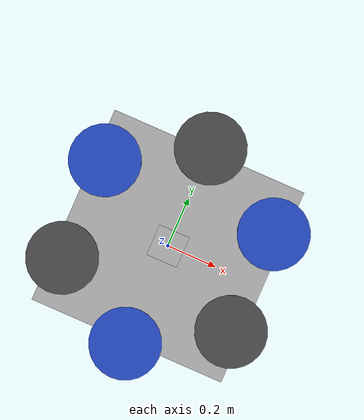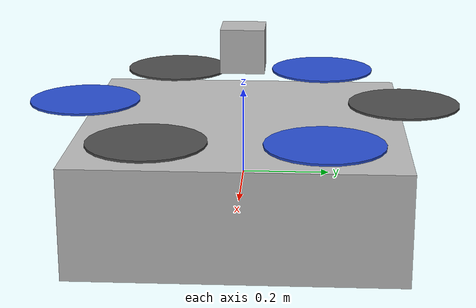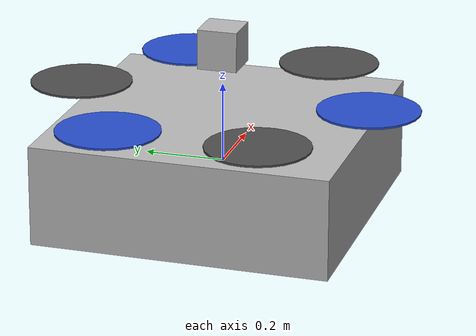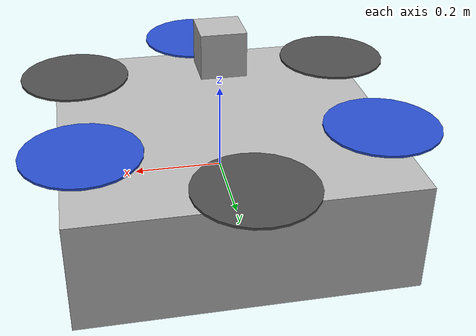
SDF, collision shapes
<?xml version='1.0'?>
<sdf version='1.6'>
  <model name='sdu_aed'>
    <!-- SDU Drone body -->
    <link name='base_link'>
      <pose>0 0 0 0 -0 3.1415</pose>
      <inertial>
        <pose>0 0 0 0 -0 0</pose>
        <mass>1.5</mass>
        <inertia>
          <ixx>0.0762625</ixx>
          <ixy>0</ixy>
          <ixz>0</ixz>
          <iyy>0.0762625</iyy>
          <iyz>0</iyz>
          <izz>0.1369</izz>
        </inertia>
      </inertial>
      <collision name='base_link_inertia_collision'>
        <pose>0 0 0 0 -0 0</pose>
        <geometry>
          <box>
            <size>0.74 0.74 0.25</size>
          </box>
        </geometry>
        <surface>
          <contact>
            <ode>
              <min_depth>0.001</min_depth>
              <max_vel>0</max_vel>
            </ode>
          </contact>
          <friction>
            <ode/>
          </friction>
        </surface>
      </collision>
      <visual name='base_link_inertia_visual'>
        <pose>0 0 0.125 0 0 0</pose>
        <geometry>
          <mesh>
            <scale>1 1 1</scale>
            <uri>model://sdu_description/meshes/sdu_drone.dae</uri>
          </mesh>
        </geometry>
      </visual>
      <gravity>1</gravity>
      <velocity_decay/>
    </link>
    <link name='/imu_link'>
      <pose>0 0 0 0 -0 0</pose>
      <inertial>
        <pose>0 0 0 0 -0 0</pose>
        <mass>0.015</mass>
        <inertia>
          <ixx>1e-05</ixx>
          <ixy>0</ixy>
          <ixz>0</ixz>
          <iyy>1e-05</iyy>
          <iyz>0</iyz>
          <izz>1e-05</izz>
        </inertia>
      </inertial>
    </link>
    <joint name='/imu_joint' type='revolute'>
      <child>/imu_link</child>
      <parent>base_link</parent>
      <axis>
        <xyz>1 0 0</xyz>
        <limit>
          <lower>0</lower>
          <upper>0</upper>
          <effort>0</effort>
          <velocity>0</velocity>
        </limit>
        <dynamics>
          <spring_reference>0</spring_reference>
          <spring_stiffness>0</spring_stiffness>
        </dynamics>
        <use_parent_model_frame>1</use_parent_model_frame>
      </axis>
    </joint>

    <!-- Landing gear -->
    <!-- for a box: ixx = 0.083 * mass * (y*y + z*z) -->
          <!-- for a box: iyy = 0.083 * mass * (x*x + z*z) -->
          <!-- for a box: izz = 0.083 * mass * (x*x + y*y) -->

<!-- Landing gear -->
    <!-- for a box: ixx = 0.083 * mass * (y*y + z*z) -->
          <!-- for a box: iyy = 0.083 * mass * (x*x + z*z) -->
          <!-- for a box: izz = 0.083 * mass * (x*x + y*y) -->

    <!-- Rotor 0 (CW) -->
    <link name='rotor_0'>
      <pose>0.0 -0.37 0.170 0 -0 0</pose>
      <inertial>
        <pose>0 0 0 0 -0 0</pose>
        <mass>0.005</mass>
        <inertia>
          <ixx>9.75e-07</ixx>
          <ixy>0</ixy>
          <ixz>0</ixz>
          <iyy>0.000273104</iyy>
          <iyz>0</iyz>
          <izz>0.000274004</izz>
        </inertia>
      </inertial>
      <collision name='rotor_0_collision'>
        <pose>0 0 0 0 -0 0</pose>
        <geometry>
          <cylinder>
            <length>0.005</length>
            <radius>0.128</radius>
          </cylinder>
        </geometry>
        <surface>
          <contact>
            <ode/>
          </contact>
          <friction>
            <ode/>
          </friction>
        </surface>
      </collision>
      <visual name='rotor_0_visual'>
        <pose>0 0 0 0 -0 0</pose>
        <geometry>
          <mesh>
            <scale>1.5 1.5 1.5</scale>
            <uri>model://sdu_description/meshes/prop_cw.dae</uri>
          </mesh>
        </geometry>
        <material>
          <script>
            <name>Gazebo/Blue</name>
            <uri>file://media/materials/scripts/gazebo.material</uri>
          </script>
        </material>
      </visual>
      <gravity>1</gravity>
      <velocity_decay/>
    </link>
    <joint name='rotor_0_joint' type='revolute'>
      <child>rotor_0</child>
      <parent>base_link</parent>
      <axis>
        <xyz>0 0 1</xyz>
        <limit>
          <lower>-1e+16</lower>
          <upper>1e+16</upper>
        </limit>
        <dynamics>
          <spring_reference>0</spring_reference>
          <spring_stiffness>0</spring_stiffness>
        </dynamics>
        <use_parent_model_frame>1</use_parent_model_frame>
      </axis>
    </joint>

    <!-- Rotor 1 (CCW) -->
    <link name='rotor_1'>
      <pose>0 0.37 0.170 0 -0 0</pose>
      <inertial>
        <pose>0 0 0 0 -0 0</pose>
        <mass>0.005</mass>
        <inertia>
          <ixx>9.75e-07</ixx>
          <ixy>0</ixy>
          <ixz>0</ixz>
          <iyy>0.000273104</iyy>
          <iyz>0</iyz>
          <izz>0.000274004</izz>
        </inertia>
      </inertial>
      <collision name='rotor_1_collision'>
        <pose>0 0 0 0 -0 0</pose>
        <geometry>
          <cylinder>
            <length>0.005</length>
            <radius>0.128</radius>
          </cylinder>
        </geometry>
        <surface>
          <contact>
            <ode/>
          </contact>
          <friction>
            <ode/>
          </friction>
        </surface>
      </collision>
      <visual name='rotor_1_visual'>
        <pose>0 0 0 0 -0 0</pose>
        <geometry>
          <mesh>
            <scale>1.5 1.5 1.5</scale>
            <uri>model://sdu_description/meshes/prop_ccw.dae</uri>
          </mesh>
        </geometry>
        <material>
          <script>
            <name>Gazebo/DarkGrey</name>
            <uri>file://media/materials/scripts/gazebo.material</uri>
          </script>
        </material>
      </visual>
      <gravity>1</gravity>
      <velocity_decay/>
    </link>
    <joint name='rotor_1_joint' type='revolute'>
      <child>rotor_1</child>
      <parent>base_link</parent>
      <axis>
        <xyz>0 0 1</xyz>
        <limit>
          <lower>-1e+16</lower>
          <upper>1e+16</upper>
        </limit>
        <dynamics>
          <spring_reference>0</spring_reference>
          <spring_stiffness>0</spring_stiffness>
        </dynamics>
        <use_parent_model_frame>1</use_parent_model_frame>
      </axis>
    </joint>

    <!-- Rotor 2 (CW) -->
    <link name='rotor_2'>
      <pose>0.320429 0.185000 0.170 0 -0 0</pose>
      <inertial>
        <pose>0 0 0 0 -0 0</pose>
        <mass>0.005</mass>
        <inertia>
          <ixx>9.75e-07</ixx>
          <ixy>0</ixy>
          <ixz>0</ixz>
          <iyy>0.000273104</iyy>
          <iyz>0</iyz>
          <izz>0.000274004</izz>
        </inertia>
      </inertial>
      <collision name='rotor_2_collision'>
        <pose>0 0 0 0 -0 0</pose>
        <geometry>
          <cylinder>
            <length>0.005</length>
            <radius>0.128</radius>
          </cylinder>
        </geometry>
        <surface>
          <contact>
            <ode/>
          </contact>
          <friction>
            <ode/>
          </friction>
        </surface>
      </collision>
      <visual name='rotor_2_visual'>
        <pose>0 0 0 0 -0 0</pose>
        <geometry>
          <mesh>
            <scale>1.5 1.5 1.5</scale>
            <uri>model://sdu_description/meshes/prop_cw.dae</uri>
          </mesh>
        </geometry>
        <material>
          <script>
            <name>Gazebo/Blue</name>
            <uri>file://media/materials/scripts/gazebo.material</uri>
          </script>
        </material>
      </visual>
      <gravity>1</gravity>
      <velocity_decay/>
    </link>
    <joint name='rotor_2_joint' type='revolute'>
      <child>rotor_2</child>
      <parent>base_link</parent>
      <axis>
        <xyz>0 0 1</xyz>
        <limit>
          <lower>-1e+16</lower>
          <upper>1e+16</upper>
        </limit>
        <dynamics>
          <spring_reference>0</spring_reference>
          <spring_stiffness>0</spring_stiffness>
        </dynamics>
        <use_parent_model_frame>1</use_parent_model_frame>
      </axis>
    </joint>

    <!-- Rotor 3 (CW) -->
    <link name='rotor_3'>
      <pose>-0.320429 -0.185000 0.170 0 -0 0</pose>
      <inertial>
        <pose>0 0 0 0 -0 0</pose>
        <mass>0.005</mass>
        <inertia>
          <ixx>9.75e-07</ixx>
          <ixy>0</ixy>
          <ixz>0</ixz>
          <iyy>0.000273104</iyy>
          <iyz>0</iyz>
          <izz>0.000274004</izz>
        </inertia>
      </inertial>
      <collision name='rotor_3_collision'>
        <pose>0 0 0 0 -0 0</pose>
        <geometry>
          <cylinder>
            <length>0.005</length>
            <radius>0.128</radius>
          </cylinder>
        </geometry>
        <surface>
          <contact>
            <ode/>
          </contact>
          <friction>
            <ode/>
          </friction>
        </surface>
      </collision>
      <visual name='rotor_3_visual'>
        <pose>0 0 0 0 -0 0</pose>
        <geometry>
          <mesh>
            <scale>1.5 1.5 1.5</scale>
            <uri>model://sdu_description/meshes/prop_ccw.dae</uri>
          </mesh>
        </geometry>
        <material>
          <script>
            <name>Gazebo/DarkGrey</name>
            <uri>file://media/materials/scripts/gazebo.material</uri>
          </script>
        </material>
      </visual>
      <gravity>1</gravity>
      <velocity_decay/>
    </link>
    <joint name='rotor_3_joint' type='revolute'>
      <child>rotor_3</child>
      <parent>base_link</parent>
      <axis>
        <xyz>0 0 1</xyz>
        <limit>
          <lower>-1e+16</lower>
          <upper>1e+16</upper>
        </limit>
        <dynamics>
          <spring_reference>0</spring_reference>
          <spring_stiffness>0</spring_stiffness>
        </dynamics>
        <use_parent_model_frame>1</use_parent_model_frame>
      </axis>
    </joint>

    <!-- Rotor 4 (CW) -->
    <link name='rotor_4'>
      <pose>0.320429 -0.185000 0.170 0 -0 0</pose>
      <inertial>
        <pose>0 0 0 0 -0 0</pose>
        <mass>0.005</mass>
        <inertia>
          <ixx>9.75e-07</ixx>
          <ixy>0</ixy>
          <ixz>0</ixz>
          <iyy>0.000273104</iyy>
          <iyz>0</iyz>
          <izz>0.000274004</izz>
        </inertia>
      </inertial>
      <collision name='rotor_4_collision'>
        <pose>0 0 0 0 -0 0</pose>
        <geometry>
          <cylinder>
            <length>0.005</length>
            <radius>0.128</radius>
          </cylinder>
        </geometry>
        <surface>
          <contact>
            <ode/>
          </contact>
          <friction>
            <ode/>
          </friction>
        </surface>
      </collision>
      <visual name='rotor_4_visual'>
        <pose>0 0 0 0 -0 0</pose>
        <geometry>
          <mesh>
            <scale>1.5 1.5 1.5</scale>
            <uri>model://sdu_description/meshes/prop_ccw.dae</uri>
          </mesh>
        </geometry>
        <material>
          <script>
            <name>Gazebo/DarkGrey</name>
            <uri>file://media/materials/scripts/gazebo.material</uri>
          </script>
        </material>
      </visual>
      <gravity>1</gravity>
      <velocity_decay/>
    </link>
    <joint name='rotor_4_joint' type='revolute'>
      <child>rotor_4</child>
      <parent>base_link</parent>
      <axis>
        <xyz>0 0 1</xyz>
        <limit>
          <lower>-1e+16</lower>
          <upper>1e+16</upper>
        </limit>
        <dynamics>
          <spring_reference>0</spring_reference>
          <spring_stiffness>0</spring_stiffness>
        </dynamics>
        <use_parent_model_frame>1</use_parent_model_frame>
      </axis>
    </joint>

    <!-- Rotor 5 (CCW) -->
    <link name='rotor_5'>
      <pose>-0.320429 0.185000 0.170 0 -0 0</pose>
      <inertial>
        <pose>0 0 0 0 -0 0</pose>
        <mass>0.005</mass>
        <inertia>
          <ixx>9.75e-07</ixx>
          <ixy>0</ixy>
          <ixz>0</ixz>
          <iyy>0.000273104</iyy>
          <iyz>0</iyz>
          <izz>0.000274004</izz>
        </inertia>
      </inertial>
      <collision name='rotor_5_collision'>
        <pose>0 0 0 0 -0 0</pose>
        <geometry>
          <cylinder>
            <length>0.005</length>
            <radius>0.128</radius>
          </cylinder>
        </geometry>
        <surface>
          <contact>
            <ode/>
          </contact>
          <friction>
            <ode/>
          </friction>
        </surface>
      </collision>
      <visual name='rotor_5_visual'>
        <pose>0 0 0 0 -0 0</pose>
        <geometry>
          <mesh>
            <scale>1.5 1.5 1.5</scale>
            <uri>model://sdu_description/meshes/prop_cw.dae</uri>
          </mesh>
        </geometry>
        <material>
          <script>
            <name>Gazebo/Blue</name>
            <uri>file://media/materials/scripts/gazebo.material</uri>
          </script>
        </material>
      </visual>
      <gravity>1</gravity>
      <velocity_decay/>
    </link>
    <joint name='rotor_5_joint' type='revolute'>
      <child>rotor_5</child>
      <parent>base_link</parent>
      <axis>
        <xyz>0 0 1</xyz>
        <limit>
          <lower>-1e+16</lower>
          <upper>1e+16</upper>
        </limit>
        <dynamics>
          <spring_reference>0</spring_reference>
          <spring_stiffness>0</spring_stiffness>
        </dynamics>
        <use_parent_model_frame>1</use_parent_model_frame>
      </axis>
    </joint>

    <plugin name='rosbag' filename='libgazebo_multirotor_base_plugin.so'>
      <robotNamespace/>
      <linkName>base_link</linkName>
      <rotorVelocitySlowdownSim>10</rotorVelocitySlowdownSim>
    </plugin>

        <plugin name='motor_model_0' filename='libgazebo_motor_model.so'>
          <robotNamespace/>
          <jointName>rotor_0_joint</jointName>
          <linkName>rotor_0</linkName>
          <turningDirection>cw</turningDirection>
          <timeConstantUp>0.0125</timeConstantUp>
          <timeConstantDown>0.025</timeConstantDown>
          <maxRotVelocity>1100</maxRotVelocity>
          <motorConstant>8.54858e-06</motorConstant>
          <momentConstant>0.06</momentConstant>
          <commandSubTopic>/gazebo/command/motor_speed</commandSubTopic>
          <motorNumber>0</motorNumber>
          <rotorDragCoefficient>0.000806428</rotorDragCoefficient>
          <rollingMomentCoefficient>1e-06</rollingMomentCoefficient>
          <motorSpeedPubTopic>/motor_speed/0</motorSpeedPubTopic>
          <rotorVelocitySlowdownSim>10</rotorVelocitySlowdownSim>
        </plugin>
        <plugin name='motor_model_1' filename='libgazebo_motor_model.so'>
          <robotNamespace/>
          <jointName>rotor_1_joint</jointName>
          <linkName>rotor_1</linkName>
          <turningDirection>ccw</turningDirection>
          <timeConstantUp>0.0125</timeConstantUp>
          <timeConstantDown>0.025</timeConstantDown>
          <maxRotVelocity>1100</maxRotVelocity>
          <motorConstant>8.54858e-06</motorConstant>
          <momentConstant>0.06</momentConstant>
          <commandSubTopic>/gazebo/command/motor_speed</commandSubTopic>
          <motorNumber>1</motorNumber>
          <rotorDragCoefficient>0.000806428</rotorDragCoefficient>
          <rollingMomentCoefficient>1e-06</rollingMomentCoefficient>
          <motorSpeedPubTopic>/motor_speed/1</motorSpeedPubTopic>
          <rotorVelocitySlowdownSim>10</rotorVelocitySlowdownSim>
        </plugin>
        <plugin name='motor_model_2' filename='libgazebo_motor_model.so'>
          <robotNamespace/>
          <jointName>rotor_2_joint</jointName>
          <linkName>rotor_2</linkName>
          <turningDirection>cw</turningDirection>
          <timeConstantUp>0.0125</timeConstantUp>
          <timeConstantDown>0.025</timeConstantDown>
          <maxRotVelocity>1100</maxRotVelocity>
          <motorConstant>8.54858e-06</motorConstant>
          <momentConstant>0.06</momentConstant>
          <commandSubTopic>/gazebo/command/motor_speed</commandSubTopic>
          <motorNumber>2</motorNumber>
          <rotorDragCoefficient>0.000806428</rotorDragCoefficient>
          <rollingMomentCoefficient>1e-06</rollingMomentCoefficient>
          <motorSpeedPubTopic>/motor_speed/2</motorSpeedPubTopic>
          <rotorVelocitySlowdownSim>10</rotorVelocitySlowdownSim>
        </plugin>
        <plugin name='motor_model_3' filename='libgazebo_motor_model.so'>
          <robotNamespace/>
          <jointName>rotor_3_joint</jointName>
          <linkName>rotor_3</linkName>
          <turningDirection>ccw</turningDirection>
          <timeConstantUp>0.0125</timeConstantUp>
          <timeConstantDown>0.025</timeConstantDown>
          <maxRotVelocity>1100</maxRotVelocity>
          <motorConstant>8.54858e-06</motorConstant>
          <momentConstant>0.06</momentConstant>
          <commandSubTopic>/gazebo/command/motor_speed</commandSubTopic>
          <motorNumber>3</motorNumber>
          <rotorDragCoefficient>0.000806428</rotorDragCoefficient>
          <rollingMomentCoefficient>1e-06</rollingMomentCoefficient>
          <motorSpeedPubTopic>/motor_speed/3</motorSpeedPubTopic>
          <rotorVelocitySlowdownSim>10</rotorVelocitySlowdownSim>
        </plugin>
        <plugin name='motor_model_4' filename='libgazebo_motor_model.so'>
          <robotNamespace/>
          <jointName>rotor_4_joint</jointName>
          <linkName>rotor_4</linkName>
          <turningDirection>ccw</turningDirection>
          <timeConstantUp>0.0125</timeConstantUp>
          <timeConstantDown>0.025</timeConstantDown>
          <maxRotVelocity>1100</maxRotVelocity>
          <motorConstant>8.54858e-06</motorConstant>
          <momentConstant>0.06</momentConstant>
          <commandSubTopic>/gazebo/command/motor_speed</commandSubTopic>
          <motorNumber>4</motorNumber>
          <rotorDragCoefficient>0.000806428</rotorDragCoefficient>
          <rollingMomentCoefficient>1e-06</rollingMomentCoefficient>
          <motorSpeedPubTopic>/motor_speed/3</motorSpeedPubTopic>
          <rotorVelocitySlowdownSim>10</rotorVelocitySlowdownSim>
        </plugin>
        <plugin name='motor_model_5' filename='libgazebo_motor_model.so'>
          <robotNamespace/>
          <jointName>rotor_5_joint</jointName>
          <linkName>rotor_5</linkName>
          <turningDirection>cw</turningDirection>
          <timeConstantUp>0.0125</timeConstantUp>
          <timeConstantDown>0.025</timeConstantDown>
          <maxRotVelocity>1100</maxRotVelocity>
          <motorConstant>8.54858e-06</motorConstant>
          <momentConstant>0.06</momentConstant>
          <commandSubTopic>/gazebo/command/motor_speed</commandSubTopic>
          <motorNumber>5</motorNumber>
          <rotorDragCoefficient>0.000806428</rotorDragCoefficient>
          <rollingMomentCoefficient>1e-06</rollingMomentCoefficient>
          <motorSpeedPubTopic>/motor_speed/3</motorSpeedPubTopic>
          <rotorVelocitySlowdownSim>10</rotorVelocitySlowdownSim>
        </plugin>

    <model name='gps0'>
      <link name='link'>
        <pose>0 0 0 0 -0 0</pose>
        <inertial>
          <pose>0 0 0 0 -0 0</pose>
          <mass>0.01</mass>
          <inertia>
            <ixx>2.1733e-06</ixx>
            <ixy>0</ixy>
            <ixz>0</ixz>
            <iyy>2.1733e-06</iyy>
            <iyz>0</iyz>
            <izz>1.8e-07</izz>
          </inertia>
        </inertial>
        <visual name='visual'>
          <geometry>
            <cylinder>
              <radius>0.01</radius>
              <length>0.002</length>
            </cylinder>
          </geometry>
          <material>
            <script>
              <name>Gazebo/Black</name>
              <uri>__default__</uri>
            </script>
          </material>
        </visual>
        <sensor name='gps' type='gps'>
          <pose>0 0 0 0 -0 0</pose>
          <plugin name='gps_plugin' filename='libgazebo_gps_plugin.so'>
            <robotNamespace/>
            <gpsNoise>1</gpsNoise>
            <gpsXYRandomWalk>2.0</gpsXYRandomWalk>
            <gpsZRandomWalk>4.0</gpsZRandomWalk>
            <gpsXYNoiseDensity>0.0002</gpsXYNoiseDensity>
            <gpsZNoiseDensity>0.0004</gpsZNoiseDensity>
            <gpsVXYNoiseDensity>0.2</gpsVXYNoiseDensity>
            <gpsVZNoiseDensity>0.4</gpsVZNoiseDensity>
	    <referenceLatitude>47.3972419</referenceLatitude>
    	    <referenceLongitude>8.5455939</referenceLongitude>
    	    <referenceAltitude>535.844915703</referenceAltitude>
          </plugin>
        </sensor>
      </link>
    </model>
    <joint name='gps0_joint' type='fixed'>
      <parent>base_link</parent>
      <child>gps0::link</child>
    </joint>
    <plugin name='groundtruth_plugin' filename='libgazebo_groundtruth_plugin.so'>
      <robotNamespace/>
    </plugin>
    <plugin name='magnetometer_plugin' filename='libgazebo_magnetometer_plugin.so'>
      <robotNamespace/>
      <pubRate>20</pubRate>
      <noiseDensity>0.0004</noiseDensity>
      <randomWalk>6.4e-06</randomWalk>
      <biasCorrelationTime>600</biasCorrelationTime>
      <magTopic>/mag</magTopic>
    </plugin>
    <plugin name='barometer_plugin' filename='libgazebo_barometer_plugin.so'>
      <robotNamespace/>
      <pubRate>10</pubRate>
      <baroTopic>/baro</baroTopic>
    </plugin>

    <plugin name='parachute_plugin' filename='libgazebo_parachute_plugin.so'>
      <robotNamespace/>
      <commandSubTopic>/gazebo/command/motor_speed</commandSubTopic>
      <motorNumber>6</motorNumber>
    </plugin>

    <plugin name='mavlink_interface' filename='libgazebo_mavlink_interface.so'>
      <robotNamespace></robotNamespace>
      <imuSubTopic>/imu</imuSubTopic>
      <magSubTopic>/mag</magSubTopic>
      <baroSubTopic>/baro</baroSubTopic>
      <mavlink_addr>INADDR_ANY</mavlink_addr>
      <mavlink_udp_port>14560</mavlink_udp_port>
      <mavlink_tcp_port>4560</mavlink_tcp_port>
      <serialEnabled>false</serialEnabled>
      <serialDevice>/dev/ttyACM0</serialDevice>
      <baudRate>921600</baudRate>
      <qgc_addr>INADDR_ANY</qgc_addr>
      <qgc_udp_port>14550</qgc_udp_port>
      <sdk_addr>INADDR_ANY</sdk_addr>
      <sdk_udp_port>14540</sdk_udp_port>
      <hil_mode>0</hil_mode>
      <hil_state_level>0</hil_state_level>
      <vehicle_is_tailsitter>0</vehicle_is_tailsitter>
      <send_vision_estimation>1</send_vision_estimation>
      <send_odometry>0</send_odometry>
      <enable_lockstep>1</enable_lockstep>
      <use_tcp>1</use_tcp>
      <motorSpeedCommandPubTopic>/gazebo/command/motor_speed</motorSpeedCommandPubTopic>
      <control_channels>
        <channel name="rotor0">
          <input_index>0</input_index>
          <input_offset>0</input_offset>
          <input_scaling>1500</input_scaling>
          <zero_position_disarmed>0</zero_position_disarmed>
          <zero_position_armed>100</zero_position_armed>
          <joint_control_type>velocity</joint_control_type>
          <joint_name>rotor_0_joint</joint_name>
        </channel>
        <channel name="rotor1">
          <input_index>1</input_index>
          <input_offset>0</input_offset>
          <input_scaling>1500</input_scaling>
          <zero_position_disarmed>0</zero_position_disarmed>
          <zero_position_armed>100</zero_position_armed>
          <joint_control_type>velocity</joint_control_type>
          <joint_name>rotor_1_joint</joint_name>
        </channel>
        <channel name="rotor2">
          <input_index>2</input_index>
          <input_offset>0</input_offset>
          <input_scaling>1500</input_scaling>
          <zero_position_disarmed>0</zero_position_disarmed>
          <zero_position_armed>100</zero_position_armed>
          <joint_control_type>velocity</joint_control_type>
          <joint_name>rotor_2_joint</joint_name>
        </channel>
        <channel name="rotor3">
          <input_index>3</input_index>
          <input_offset>0</input_offset>
          <input_scaling>1500</input_scaling>
          <zero_position_disarmed>0</zero_position_disarmed>
          <zero_position_armed>100</zero_position_armed>
          <joint_control_type>velocity</joint_control_type>
          <joint_name>rotor_3_joint</joint_name>
        </channel>
        <channel name="rotor4">
          <input_index>4</input_index>
          <input_offset>0</input_offset>
          <input_scaling>1500</input_scaling>
          <zero_position_disarmed>0</zero_position_disarmed>
          <zero_position_armed>100</zero_position_armed>
          <joint_control_type>velocity</joint_control_type>
          <joint_name>rotor_4_joint</joint_name>
        </channel>
        <channel name="rotor5">
          <input_index>5</input_index>
          <input_offset>0</input_offset>
          <input_scaling>1500</input_scaling>
          <zero_position_disarmed>0</zero_position_disarmed>
          <zero_position_armed>100</zero_position_armed>
          <joint_control_type>velocity</joint_control_type>
          <joint_name>rotor_5_joint</joint_name>
        </channel>
        <channel name='aux1'>
          <input_index>6</input_index>
          <input_offset>0</input_offset>
          <input_scaling>1000</input_scaling>
          <zero_position_disarmed>0</zero_position_disarmed>
          <zero_position_armed>100</zero_position_armed>
          <joint_control_type>velocity</joint_control_type>
        </channel>
      </control_channels>
    </plugin>
    <static>0</static>
    <plugin name='gazebo_imu_plugin' filename='libgazebo_imu_plugin.so'>
      <robotNamespace></robotNamespace>
      <linkName>/imu_link</linkName>
      <imuTopic>/imu</imuTopic>
      <gyroscopeNoiseDensity>0.0003394</gyroscopeNoiseDensity>
      <gyroscopeRandomWalk>3.8785e-05</gyroscopeRandomWalk>
      <gyroscopeBiasCorrelationTime>1000.0</gyroscopeBiasCorrelationTime>
      <gyroscopeTurnOnBiasSigma>0.0087</gyroscopeTurnOnBiasSigma>
      <accelerometerNoiseDensity>0.004</accelerometerNoiseDensity>
      <accelerometerRandomWalk>0.006</accelerometerRandomWalk>
      <accelerometerBiasCorrelationTime>300.0</accelerometerBiasCorrelationTime>
      <accelerometerTurnOnBiasSigma>0.196</accelerometerTurnOnBiasSigma>
    </plugin>

<!-- Depth Camera sensor -->
    <link name='sensor_link'>
      <pose>0.0 0.0 -0.08 0 0 0</pose>
      <inertial>
        <mass>0.095</mass>
        <inertia>
          <ixx>4.15e-6</ixx>
          <ixy>0</ixy>
          <ixz>0</ixz>
          <iyy>2.407e-6</iyy>
          <iyz>0</iyz>
          <izz>2.407e-6</izz>
        </inertia>
      </inertial>
      <sensor name="depth_camera" type="depth">
        <update_rate>30</update_rate>
        <pose>0.0 0.0 0.0 0 1.57 3.1415</pose>
        <camera>
          <horizontal_fov>1.22173</horizontal_fov>
          <image>
            <format>R8G8B8</format>
            <width>320</width>
            <height>240</height>
          </image>
          <clip>
            <near>0.1</near>
            <far>20</far>
          </clip>
        </camera>
        <plugin filename="libgazebo_ros_openni_kinect.so" name="camera_controller">
          <cameraName>camera</cameraName>
          <alwaysOn>true</alwaysOn>
          <updateRate>30</updateRate>
          <pointCloudCutoff>0.25</pointCloudCutoff>
          <pointCloudCutoffMax>9</pointCloudCutoffMax>
          <imageTopicName>color/image_raw</imageTopicName>
          <cameraInfoTopicName>color/camera_info</cameraInfoTopicName>
          <depthImageTopicName>depth/image_rect_raw</depthImageTopicName>
          <depthImageCameraInfoTopicName>depth/camera_info</depthImageCameraInfoTopicName>
          <pointCloudTopicName>depth/color/points</pointCloudTopicName>
          <frameName>camera_link</frameName>
          <distortion_k1>0.0</distortion_k1>
          <distortion_k2>0.0</distortion_k2>
          <distortion_k3>0.0</distortion_k3>
          <distortion_t1>0.0</distortion_t1>
          <distortion_t2>0.0</distortion_t2>
        </plugin>
      </sensor>
      <self_collide>0</self_collide>
      <kinematic>0</kinematic>
    </link>

<joint name='sensor_joint' type='revolute'>
      <child>sensor_link</child>
      <parent>base_link</parent>
      <axis>
        <xyz>1 0 0</xyz>
        <limit>
          <lower>0</lower>
          <upper>0</upper>
          <effort>0</effort>
          <velocity>0</velocity>
        </limit>
        <dynamics>
          <spring_reference>0</spring_reference>
          <spring_stiffness>0</spring_stiffness>
        </dynamics>
        <use_parent_model_frame>1</use_parent_model_frame>
      </axis>
    </joint>

<link name="imu_link">
          <pose>0 0 0 0 0 0</pose>
          <collision name="collision">
            <pose>0 0 0.3 0 0 0</pose>
            <geometry>
              <box>
                <size>0.1 0.1 0.1</size>
              </box>
            </geometry>
          </collision>
          <inertial>
            <mass>0.016</mass>
            <inertia>
               <ixx>0.0001</ixx>
               <ixy>0</ixy>
               <ixz>0</ixz>
               <iyy>0.0001</iyy>
               <iyz>0</iyz>
               <izz>0.0001</izz>
               <!-- low intertia necessary to avoid not disturb the ship -->
            </inertia>
          </inertial>

      <sensor name="imu_sensor" type="imu">
      <always_on>true</always_on>
      <update_rate>300</update_rate>
      <visualize>true</visualize>
      <topic>__default_topic__</topic>
      <plugin filename="libgazebo_ros_imu_sensor.so" name="imu_plugin">
        <topicName>imu</topicName>
        <bodyName>imu_link</bodyName>
        <updateRateHZ>300.0</updateRateHZ>
        <gaussianNoise>0.0</gaussianNoise>
        <xyzOffset>0 0 0</xyzOffset>
        <rpyOffset>0 0 0</rpyOffset>
        <frameName>imu_link</frameName>
        <initialOrientationAsReference>false</initialOrientationAsReference>
      </plugin>
      <pose>0 0 0 0 0 0</pose>
    </sensor>
    </link>

        <joint name="imu_joint" type="fixed">
          <pose>0 0 0 0 0 0</pose>
          <parent>base_link</parent>
          <child>imu_link</child>
        </joint>

  </model>
</sdf>
